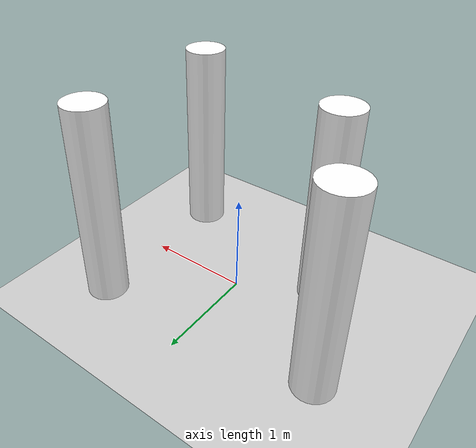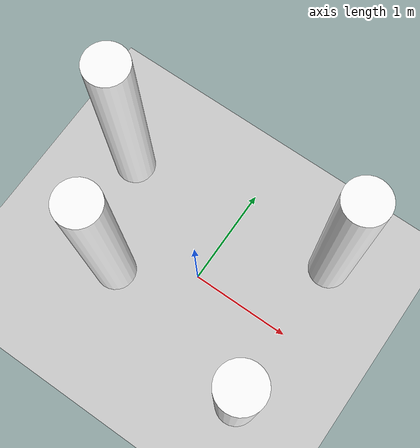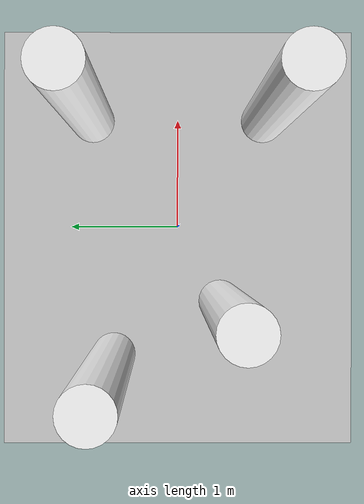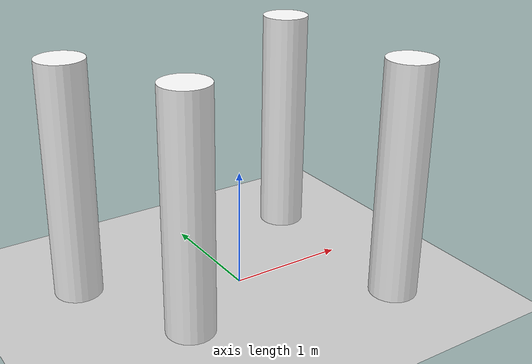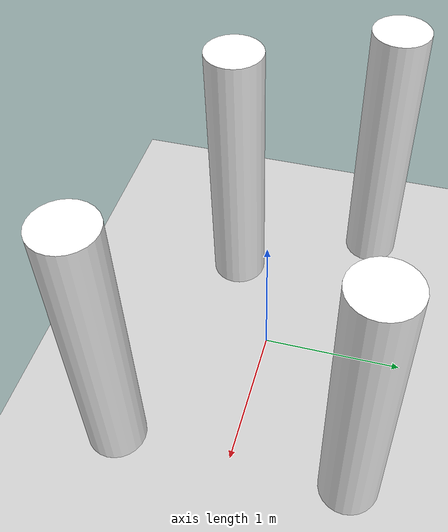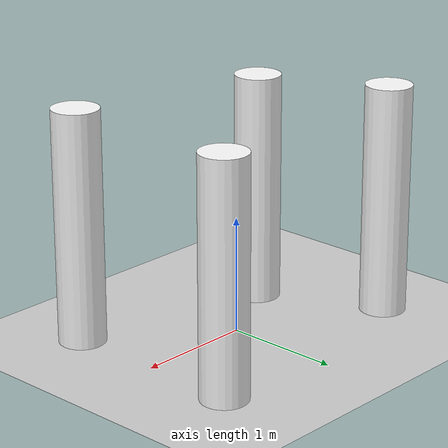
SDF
<sdf version="1.5">
 <world name="mrsim">
  <physics type="ode">
   <max_step_size>0.002000</max_step_size>
   <real_time_factor>1.000000</real_time_factor>
   <real_time_update_rate>500.000000</real_time_update_rate>
   <gravity>0 0 -9.81</gravity>
   <magnetic_field>23.816e-6 -0.41e-6 -39.829e-6</magnetic_field>
  </physics>
  <include><uri>model://ground_plane</uri></include>
  <include><uri>model://sun</uri></include>
  <model name="p1">
   <static>1</static>
   <link name="main">
    <visual name="pillar">
     <pose>1 0.8 1 0 0 0</pose>
     <geometry><cylinder><radius>0.2</radius><length>2</length></cylinder></geometry>
     <material><ambient>0.3 0.3 0.3 1</ambient><diffuse>1.0 1.0 1.0 1</diffuse></material>
    </visual>
   </link>
  </model>
  <model name="p2">
   <static>1</static>
   <link name="main">
    <visual name="pillar">
     <pose>1 -0.8 1 0 0 0</pose>
     <geometry><cylinder><radius>0.2</radius><length>2</length></cylinder></geometry>
     <material><ambient>0.3 0.3 0.3 1</ambient><diffuse>1.0 1.0 1.0 1</diffuse></material>
    </visual>
   </link>
  </model>
  <model name="p3">
   <static>1</static>
   <link name="main">
    <visual name="pillar">
     <pose>-1.2 0.6 1 0 0 0</pose>
     <geometry><cylinder><radius>0.2</radius><length>2</length></cylinder></geometry>
     <material><ambient>0.3 0.3 0.3 1</ambient><diffuse>1.0 1.0 1.0 1</diffuse></material>
    </visual>
   </link>
  </model>
  <model name="p4">
   <static>1</static>
   <link name="main">
    <visual name="pillar">
     <pose>-0.7 -0.4 1 0 0 0</pose>
     <geometry><cylinder><radius>0.2</radius><length>2</length></cylinder></geometry>
     <material><ambient>0.3 0.3 0.3 1</ambient><diffuse>1.0 1.0 1.0 1</diffuse></material>
    </visual>
   </link>
  </model>
  <plugin name="optitrack" filename="optitrack-gazebo.so">
   <hz>1000</hz>
   <port>1509</port>
   <publish><link>QR_0::qr::base</link><name>QR_0</name></publish>
  </plugin>
 </world>
</sdf>
